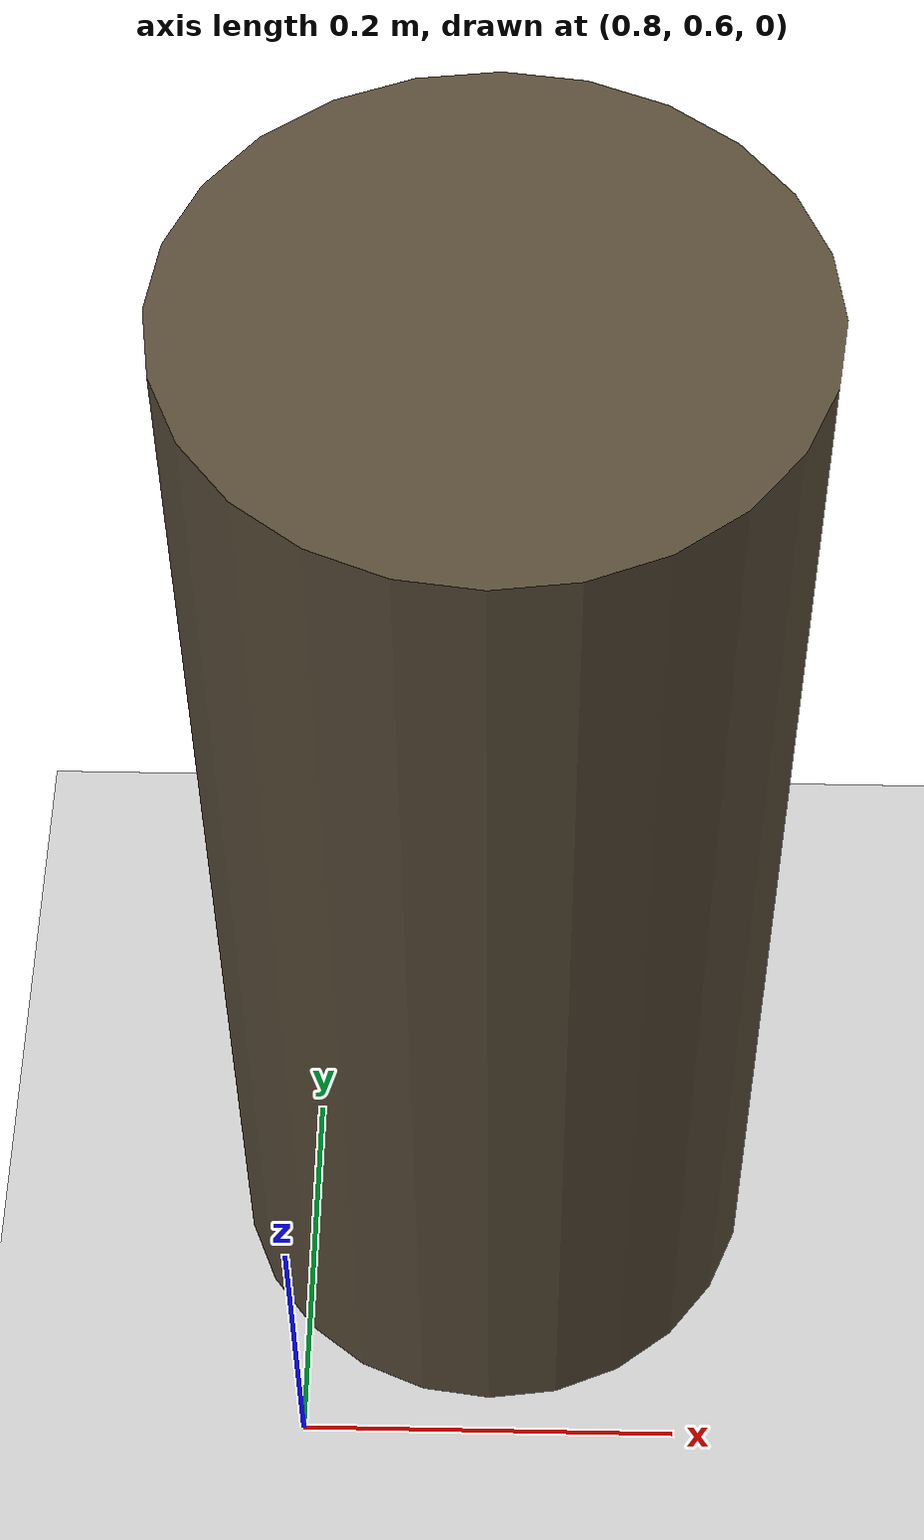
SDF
<?xml version="1.0"?>
<sdf version="1.9">
  <world name="follow_me_orbit_obstacle">
    <plugin filename="libignition-gazebo-physics-system.so"
            name="ignition::gazebo::systems::Physics"/>
    <plugin filename="libignition-gazebo-user-commands-system.so"
            name="ignition::gazebo::systems::UserCommands"/>
    <plugin filename="libignition-gazebo-scene-broadcaster-system.so"
            name="ignition::gazebo::systems::SceneBroadcaster"/>
    <plugin filename="libignition-gazebo-sensors-system.so"
            name="ignition::gazebo::systems::Sensors">
      <!-- FortressではLiDAR出力をGazebo Transportへ出し、ROS側へはros_gz_bridgeで接続する。 -->
      <render_engine>ogre2</render_engine>
    </plugin>

    <physics name="default_physics" type="ode">
      <max_step_size>0.001</max_step_size>
      <real_time_update_rate>1000</real_time_update_rate>
      <real_time_factor>1.0</real_time_factor>
    </physics>

    <scene>
      <ambient>0.45 0.45 0.45 1</ambient>
      <background>0.7 0.7 0.7 1</background>
      <shadows>true</shadows>
    </scene>

    <light type="directional" name="sun">
      <cast_shadows>true</cast_shadows>
      <pose>0 0 10 0 0 0</pose>
      <diffuse>0.8 0.8 0.8 1</diffuse>
      <specular>0.2 0.2 0.2 1</specular>
      <attenuation>
        <range>1000</range>
        <constant>0.9</constant>
        <linear>0.01</linear>
        <quadratic>0.001</quadratic>
      </attenuation>
      <direction>-0.5 0.1 -0.9</direction>
    </light>

    <model name="ground_plane">
      <static>true</static>
      <link name="link">
        <collision name="collision">
          <geometry>
            <plane>
              <normal>0 0 1</normal>
              <size>100 100</size>
            </plane>
          </geometry>
        </collision>
        <visual name="visual">
          <geometry>
            <plane>
              <normal>0 0 1</normal>
              <size>100 100</size>
            </plane>
          </geometry>
          <material>
            <ambient>0.8 0.8 0.8 1</ambient>
            <diffuse>0.8 0.8 0.8 1</diffuse>
          </material>
        </visual>
      </link>
    </model>

    <model name="orbit_center_obstacle">
      <static>true</static>
      <!-- Actor初期位置(x=0.9, y=0.05)から左旋回すると、半径約0.7mでこの障害物の周囲を大回りする。 -->
      <pose>0.90 0.76 0.35 0 0 0</pose>
      <link name="link">
        <collision name="collision">
          <geometry>
            <cylinder>
              <radius>0.14</radius>
              <length>0.70</length>
            </cylinder>
          </geometry>
        </collision>
        <visual name="visual">
          <!-- 536870913 = GUI表示bit(1) + LiDAR専用bit(0x20000000)。障害物はGUIにも/scanにも出す。 -->
          <visibility_flags>536870913</visibility_flags>
          <geometry>
            <cylinder>
              <radius>0.14</radius>
              <length>0.70</length>
            </cylinder>
          </geometry>
          <material>
            <ambient>0.35 0.30 0.22 1</ambient>
            <diffuse>0.35 0.30 0.22 1</diffuse>
          </material>
        </visual>
      </link>
    </model>
  </world>
</sdf>
